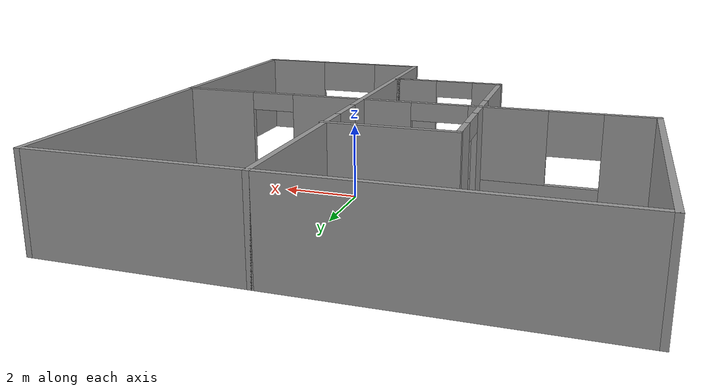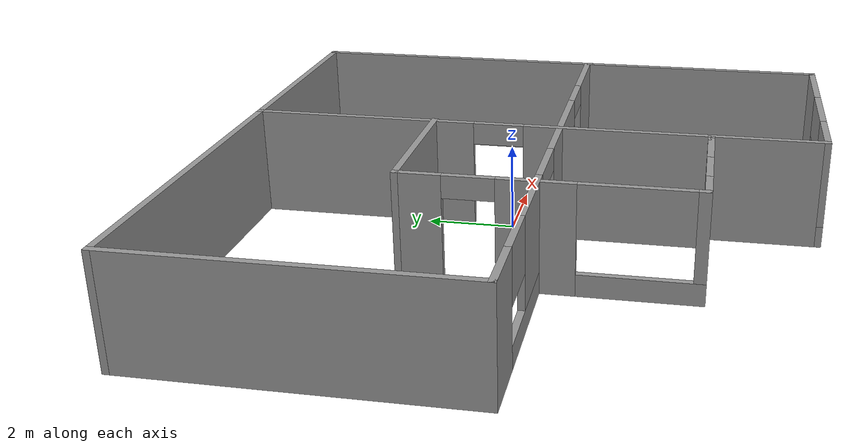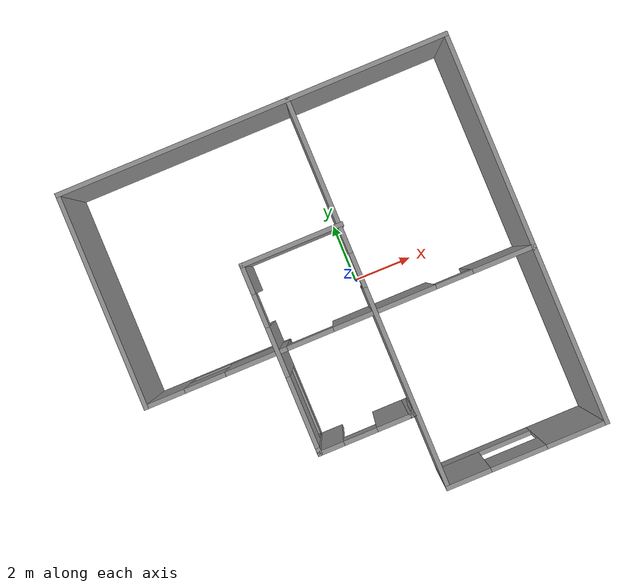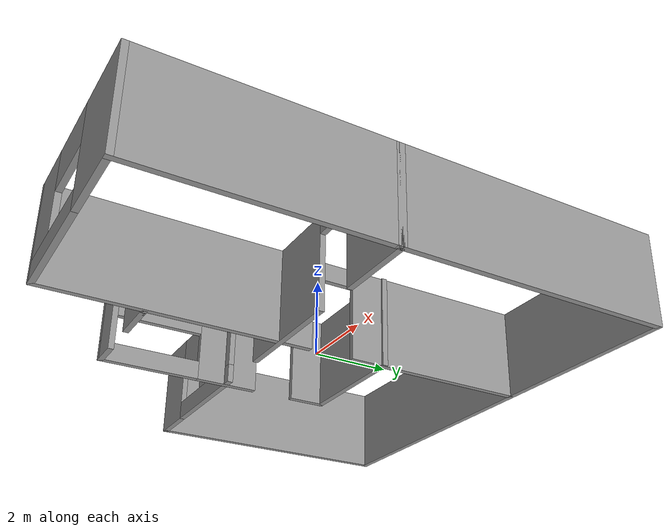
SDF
<?xml version='1.0'?>
<sdf version='1.7'>
  <model name='Floorplan'>
    <pose>-1.05619 -0.451332 0 0 -0 0</pose>
    <link name='Wall_0'>
      <collision name='Wall_0_Collision'>
        <geometry>
          <box>
            <size>13.25 0.15 2.5</size>
          </box>
        </geometry>
        <pose>0 0 1.25 0 -0 0</pose>
      </collision>
      <visual name='Wall_0_Visual'>
        <pose>0 0 1.25 0 -0 0</pose>
        <geometry>
          <box>
            <size>13.25 0.15 2.5</size>
          </box>
        </geometry>
        <material>
          <script>
            <uri>file://media/materials/scripts/gazebo.material</uri>
            <name>Gazebo/Grey</name>
          </script>
          <ambient>1 1 1 1</ambient>
        </material>
        <meta>
          <layer>0</layer>
        </meta>
      </visual>
      <pose>-0 6.55 0 0 -0 0</pose>
    </link>
    <link name='Wall_1'>
      <collision name='Wall_1_Collision'>
        <geometry>
          <box>
            <size>13.25 0.15 2.5</size>
          </box>
        </geometry>
        <pose>0 0 1.25 0 -0 0</pose>
      </collision>
      <visual name='Wall_1_Visual'>
        <pose>0 0 1.25 0 -0 0</pose>
        <geometry>
          <box>
            <size>13.25 0.15 2.5</size>
          </box>
        </geometry>
        <material>
          <script>
            <uri>file://media/materials/scripts/gazebo.material</uri>
            <name>Gazebo/Grey</name>
          </script>
          <ambient>1 1 1 1</ambient>
        </material>
        <meta>
          <layer>0</layer>
        </meta>
      </visual>
      <pose>6.55 0 0 0 -0 -1.5708</pose>
    </link>
    <link name='Wall_10'>
      <collision name='Wall_10_Collision'>
        <geometry>
          <box>
            <size>3.5 0.15 2.5</size>
          </box>
        </geometry>
        <pose>0 0 1.25 0 -0 0</pose>
      </collision>
      <visual name='Wall_10_Visual'>
        <pose>0 0 1.25 0 -0 0</pose>
        <geometry>
          <box>
            <size>3.5 0.15 2.5</size>
          </box>
        </geometry>
        <material>
          <script>
            <uri>file://media/materials/scripts/gazebo.material</uri>
            <name>Gazebo/Grey</name>
          </script>
          <ambient>1 1 1 1</ambient>
        </material>
        <meta>
          <layer>0</layer>
        </meta>
      </visual>
      <pose>-0.419203 2.32102 0 0 -0 3.14159</pose>
    </link>
    <link name='Wall_11'>
      <pose>-2.0942 -0.853976 0 0 -0 -1.5708</pose>
      <visual name='Wall_11_Visual_0'>
        <pose>-2.72388 0 1.25 0 -0 0</pose>
        <geometry>
          <box>
            <size>1.05224 0.15 2.5</size>
          </box>
        </geometry>
        <material>
          <script>
            <uri>file://media/materials/scripts/gazebo.material</uri>
            <name>Gazebo/Grey</name>
          </script>
          <ambient>1 1 1 1</ambient>
        </material>
        <meta>
          <layer>0</layer>
        </meta>
      </visual>
      <collision name='Wall_11_Collision_0'>
        <geometry>
          <box>
            <size>1.05224 0.15 2.5</size>
          </box>
        </geometry>
        <pose>-2.72388 0 1.25 0 -0 0</pose>
      </collision>
      <visual name='Wall_11_Visual_1'>
        <pose>-0.24734 0 1.25 0 -0 0</pose>
        <geometry>
          <box>
            <size>1.66877 0.15 2.5</size>
          </box>
        </geometry>
        <material>
          <script>
            <uri>file://media/materials/scripts/gazebo.material</uri>
            <name>Gazebo/Grey</name>
          </script>
          <ambient>1 1 1 1</ambient>
        </material>
        <meta>
          <layer>0</layer>
        </meta>
      </visual>
      <collision name='Wall_11_Collision_1'>
        <geometry>
          <box>
            <size>1.66877 0.15 2.5</size>
          </box>
        </geometry>
        <pose>-0.24734 0 1.25 0 -0 0</pose>
      </collision>
      <visual name='Wall_11_Visual_2'>
        <pose>1.91852 0 0.25 0 -0 0</pose>
        <geometry>
          <box>
            <size>2.66296 0.15 0.5</size>
          </box>
        </geometry>
        <material>
          <script>
            <uri>file://media/materials/scripts/gazebo.material</uri>
            <name>Gazebo/Grey</name>
          </script>
          <ambient>1 1 1 1</ambient>
        </material>
        <meta>
          <layer>0</layer>
        </meta>
      </visual>
      <collision name='Wall_11_Collision_2'>
        <geometry>
          <box>
            <size>2.66296 0.15 0.5</size>
          </box>
        </geometry>
        <pose>1.91852 0 0.25 0 -0 0</pose>
      </collision>
      <visual name='Wall_11_Visual_3'>
        <pose>3.11898 0 1.5 0 -0 0</pose>
        <geometry>
          <box>
            <size>0.262046 0.15 2</size>
          </box>
        </geometry>
        <material>
          <script>
            <uri>file://media/materials/scripts/gazebo.material</uri>
            <name>Gazebo/Grey</name>
          </script>
          <ambient>1 1 1 1</ambient>
        </material>
        <meta>
          <layer>0</layer>
        </meta>
      </visual>
      <collision name='Wall_11_Collision_3'>
        <geometry>
          <box>
            <size>0.262046 0.15 2</size>
          </box>
        </geometry>
        <pose>3.11898 0 1.5 0 -0 0</pose>
      </collision>
      <visual name='Wall_11_Visual_4'>
        <pose>1.7875 0 1.9 0 -0 0</pose>
        <geometry>
          <box>
            <size>2.40091 0.15 1.2</size>
          </box>
        </geometry>
        <material>
          <script>
            <uri>file://media/materials/scripts/gazebo.material</uri>
            <name>Gazebo/Grey</name>
          </script>
          <ambient>1 1 1 1</ambient>
        </material>
        <meta>
          <layer>0</layer>
        </meta>
      </visual>
      <collision name='Wall_11_Collision_4'>
        <geometry>
          <box>
            <size>2.40091 0.15 1.2</size>
          </box>
        </geometry>
        <pose>1.7875 0 1.9 0 -0 0</pose>
      </collision>
      <visual name='Wall_11_Visual_5'>
        <pose>-1.63975 0 2.25 0 -0 0</pose>
        <geometry>
          <box>
            <size>1.11604 0.15 0.5</size>
          </box>
        </geometry>
        <material>
          <script>
            <uri>file://media/materials/scripts/gazebo.material</uri>
            <name>Gazebo/Grey</name>
          </script>
          <ambient>1 1 1 1</ambient>
        </material>
        <meta>
          <layer>0</layer>
        </meta>
      </visual>
      <collision name='Wall_11_Collision_5'>
        <geometry>
          <box>
            <size>1.11604 0.15 0.5</size>
          </box>
        </geometry>
        <pose>-1.63975 0 2.25 0 -0 0</pose>
      </collision>
    </link>
    <link name='Wall_12'>
      <pose>-0.544203 -4.02897 0 0 -0 0</pose>
      <visual name='Wall_12_Visual_0'>
        <pose>-1.17371 0 1.25 0 -0 0</pose>
        <geometry>
          <box>
            <size>0.902576 0.15 2.5</size>
          </box>
        </geometry>
        <material>
          <script>
            <uri>file://media/materials/scripts/gazebo.material</uri>
            <name>Gazebo/Grey</name>
          </script>
          <ambient>1 1 1 1</ambient>
        </material>
        <meta>
          <layer>0</layer>
        </meta>
      </visual>
      <collision name='Wall_12_Collision_0'>
        <geometry>
          <box>
            <size>0.902576 0.15 2.5</size>
          </box>
        </geometry>
        <pose>-1.17371 0 1.25 0 -0 0</pose>
      </collision>
      <visual name='Wall_12_Visual_1'>
        <pose>1.01067 0 1.25 0 -0 0</pose>
        <geometry>
          <box>
            <size>1.22867 0.15 2.5</size>
          </box>
        </geometry>
        <material>
          <script>
            <uri>file://media/materials/scripts/gazebo.material</uri>
            <name>Gazebo/Grey</name>
          </script>
          <ambient>1 1 1 1</ambient>
        </material>
        <meta>
          <layer>0</layer>
        </meta>
      </visual>
      <collision name='Wall_12_Collision_1'>
        <geometry>
          <box>
            <size>1.22867 0.15 2.5</size>
          </box>
        </geometry>
        <pose>1.01067 0 1.25 0 -0 0</pose>
      </collision>
      <visual name='Wall_12_Visual_2'>
        <pose>-0.163045 0 2.25 0 -0 0</pose>
        <geometry>
          <box>
            <size>1.11876 0.15 0.5</size>
          </box>
        </geometry>
        <material>
          <script>
            <uri>file://media/materials/scripts/gazebo.material</uri>
            <name>Gazebo/Grey</name>
          </script>
          <ambient>1 1 1 1</ambient>
        </material>
        <meta>
          <layer>0</layer>
        </meta>
      </visual>
      <collision name='Wall_12_Collision_2'>
        <geometry>
          <box>
            <size>1.11876 0.15 0.5</size>
          </box>
        </geometry>
        <pose>-0.163045 0 2.25 0 -0 0</pose>
      </collision>
    </link>
    <link name='Wall_13'>
      <collision name='Wall_13_Collision'>
        <geometry>
          <box>
            <size>0.25 0.15 2.5</size>
          </box>
        </geometry>
        <pose>0 0 1.25 0 -0 0</pose>
      </collision>
      <visual name='Wall_13_Visual'>
        <pose>0 0 1.25 0 -0 0</pose>
        <geometry>
          <box>
            <size>0.25 0.15 2.5</size>
          </box>
        </geometry>
        <material>
          <script>
            <uri>file://media/materials/scripts/gazebo.material</uri>
            <name>Gazebo/Grey</name>
          </script>
          <ambient>1 1 1 1</ambient>
        </material>
        <meta>
          <layer>0</layer>
        </meta>
      </visual>
      <pose>1.0558 -4.02897 0 0 -0 0</pose>
    </link>
    <link name='Wall_14'>
      <collision name='Wall_14_Collision'>
        <geometry>
          <box>
            <size>0.16 0.15 2.5</size>
          </box>
        </geometry>
        <pose>0 0 1.25 0 -0 0</pose>
      </collision>
      <visual name='Wall_14_Visual'>
        <pose>0 0 1.25 0 -0 0</pose>
        <geometry>
          <box>
            <size>0.16 0.15 2.5</size>
          </box>
        </geometry>
        <material>
          <script>
            <uri>file://media/materials/scripts/gazebo.material</uri>
            <name>Gazebo/Grey</name>
          </script>
          <ambient>1 1 1 1</ambient>
        </material>
        <meta>
          <layer>0</layer>
        </meta>
      </visual>
      <pose>1.1108 -4.02897 0 0 -0 0</pose>
    </link>
    <link name='Wall_2'>
      <pose>3.875 -6.55 0 0 -0 3.14159</pose>
      <visual name='Wall_2_Visual_0'>
        <pose>-1.7016 0 1.25 0 -0 0</pose>
        <geometry>
          <box>
            <size>2.09681 0.15 2.5</size>
          </box>
        </geometry>
        <material>
          <script>
            <uri>file://media/materials/scripts/gazebo.material</uri>
            <name>Gazebo/Grey</name>
          </script>
          <ambient>1 1 1 1</ambient>
        </material>
        <meta>
          <layer>0</layer>
        </meta>
      </visual>
      <collision name='Wall_2_Collision_0'>
        <geometry>
          <box>
            <size>2.09681 0.15 2.5</size>
          </box>
        </geometry>
        <pose>-1.7016 0 1.25 0 -0 0</pose>
      </collision>
      <visual name='Wall_2_Visual_1'>
        <pose>1.0484 0 0.25 0 -0 0</pose>
        <geometry>
          <box>
            <size>3.40319 0.15 0.5</size>
          </box>
        </geometry>
        <material>
          <script>
            <uri>file://media/materials/scripts/gazebo.material</uri>
            <name>Gazebo/Grey</name>
          </script>
          <ambient>1 1 1 1</ambient>
        </material>
        <meta>
          <layer>0</layer>
        </meta>
      </visual>
      <collision name='Wall_2_Collision_1'>
        <geometry>
          <box>
            <size>3.40319 0.15 0.5</size>
          </box>
        </geometry>
        <pose>1.0484 0 0.25 0 -0 0</pose>
      </collision>
      <visual name='Wall_2_Visual_2'>
        <pose>1.9874 0 1.5 0 -0 0</pose>
        <geometry>
          <box>
            <size>1.52519 0.15 2</size>
          </box>
        </geometry>
        <material>
          <script>
            <uri>file://media/materials/scripts/gazebo.material</uri>
            <name>Gazebo/Grey</name>
          </script>
          <ambient>1 1 1 1</ambient>
        </material>
        <meta>
          <layer>0</layer>
        </meta>
      </visual>
      <collision name='Wall_2_Collision_2'>
        <geometry>
          <box>
            <size>1.52519 0.15 2</size>
          </box>
        </geometry>
        <pose>1.9874 0 1.5 0 -0 0</pose>
      </collision>
      <visual name='Wall_2_Visual_3'>
        <pose>0.285807 0 2 0 -0 0</pose>
        <geometry>
          <box>
            <size>1.878 0.15 1</size>
          </box>
        </geometry>
        <material>
          <script>
            <uri>file://media/materials/scripts/gazebo.material</uri>
            <name>Gazebo/Grey</name>
          </script>
          <ambient>1 1 1 1</ambient>
        </material>
        <meta>
          <layer>0</layer>
        </meta>
      </visual>
      <collision name='Wall_2_Collision_3'>
        <geometry>
          <box>
            <size>1.878 0.15 1</size>
          </box>
        </geometry>
        <pose>0.285807 0 2 0 -0 0</pose>
      </collision>
    </link>
    <link name='Wall_3'>
      <pose>1.2 0 0 0 -0 1.5708</pose>
      <visual name='Wall_3_Visual_0'>
        <pose>-3.20624 0 1.25 0 -0 0</pose>
        <geometry>
          <box>
            <size>6.83751 0.15 2.5</size>
          </box>
        </geometry>
        <material>
          <script>
            <uri>file://media/materials/scripts/gazebo.material</uri>
            <name>Gazebo/Grey</name>
          </script>
          <ambient>1 1 1 1</ambient>
        </material>
        <meta>
          <layer>0</layer>
        </meta>
      </visual>
      <collision name='Wall_3_Collision_0'>
        <geometry>
          <box>
            <size>6.83751 0.15 2.5</size>
          </box>
        </geometry>
        <pose>-3.20624 0 1.25 0 -0 0</pose>
      </collision>
      <visual name='Wall_3_Visual_1'>
        <pose>3.99952 0 1.25 0 -0 0</pose>
        <geometry>
          <box>
            <size>5.25096 0.15 2.5</size>
          </box>
        </geometry>
        <material>
          <script>
            <uri>file://media/materials/scripts/gazebo.material</uri>
            <name>Gazebo/Grey</name>
          </script>
          <ambient>1 1 1 1</ambient>
        </material>
        <meta>
          <layer>0</layer>
        </meta>
      </visual>
      <collision name='Wall_3_Collision_1'>
        <geometry>
          <box>
            <size>5.25096 0.15 2.5</size>
          </box>
        </geometry>
        <pose>3.99952 0 1.25 0 -0 0</pose>
      </collision>
      <visual name='Wall_3_Visual_2'>
        <pose>0.793274 0 2.25 0 -0 0</pose>
        <geometry>
          <box>
            <size>1.16152 0.15 0.5</size>
          </box>
        </geometry>
        <material>
          <script>
            <uri>file://media/materials/scripts/gazebo.material</uri>
            <name>Gazebo/Grey</name>
          </script>
          <ambient>1 1 1 1</ambient>
        </material>
        <meta>
          <layer>0</layer>
        </meta>
      </visual>
      <collision name='Wall_3_Collision_2'>
        <geometry>
          <box>
            <size>1.16152 0.15 0.5</size>
          </box>
        </geometry>
        <pose>0.793274 0 2.25 0 -0 0</pose>
      </collision>
    </link>
    <link name='Wall_4'>
      <collision name='Wall_4_Collision'>
        <geometry>
          <box>
            <size>0.15 0.15 2.5</size>
          </box>
        </geometry>
        <pose>0 0 1.25 0 -0 0</pose>
      </collision>
      <visual name='Wall_4_Visual'>
        <pose>0 0 1.25 0 -0 0</pose>
        <geometry>
          <box>
            <size>0.15 0.15 2.5</size>
          </box>
        </geometry>
        <material>
          <script>
            <uri>file://media/materials/scripts/gazebo.material</uri>
            <name>Gazebo/Grey</name>
          </script>
          <ambient>1 1 1 1</ambient>
        </material>
        <meta>
          <layer>0</layer>
        </meta>
      </visual>
      <pose>1.2 6.55 0 0 -0 0</pose>
    </link>
    <link name='Wall_6'>
      <collision name='Wall_6_Collision'>
        <geometry>
          <box>
            <size>7.31853 0.15 2.5</size>
          </box>
        </geometry>
        <pose>0 0 1.25 0 -0 0</pose>
      </collision>
      <visual name='Wall_6_Visual'>
        <pose>0 0 1.25 0 -0 0</pose>
        <geometry>
          <box>
            <size>7.31853 0.15 2.5</size>
          </box>
        </geometry>
        <material>
          <script>
            <uri>file://media/materials/scripts/gazebo.material</uri>
            <name>Gazebo/Grey</name>
          </script>
          <ambient>1 1 1 1</ambient>
        </material>
        <meta>
          <layer>0</layer>
        </meta>
      </visual>
      <pose>-6.55 2.96574 0 0 -0 -1.5708</pose>
    </link>
    <link name='Wall_7'>
      <pose>-0 -0.618526 0 0 -0 0</pose>
      <visual name='Wall_7_Visual_0'>
        <pose>-5.92929 0 1.25 0 -0 0</pose>
        <geometry>
          <box>
            <size>1.39141 0.15 2.5</size>
          </box>
        </geometry>
        <material>
          <script>
            <uri>file://media/materials/scripts/gazebo.material</uri>
            <name>Gazebo/Grey</name>
          </script>
          <ambient>1 1 1 1</ambient>
        </material>
        <meta>
          <layer>0</layer>
        </meta>
      </visual>
      <collision name='Wall_7_Collision_0'>
        <geometry>
          <box>
            <size>1.39141 0.15 2.5</size>
          </box>
        </geometry>
        <pose>-5.92929 0 1.25 0 -0 0</pose>
      </collision>
      <visual name='Wall_7_Visual_1'>
        <pose>1.5186 0 1.25 0 -0 0</pose>
        <geometry>
          <box>
            <size>3.46237 0.15 2.5</size>
          </box>
        </geometry>
        <material>
          <script>
            <uri>file://media/materials/scripts/gazebo.material</uri>
            <name>Gazebo/Grey</name>
          </script>
          <ambient>1 1 1 1</ambient>
        </material>
        <meta>
          <layer>0</layer>
        </meta>
      </visual>
      <collision name='Wall_7_Collision_1'>
        <geometry>
          <box>
            <size>3.46237 0.15 2.5</size>
          </box>
        </geometry>
        <pose>1.5186 0 1.25 0 -0 0</pose>
      </collision>
      <visual name='Wall_7_Visual_2'>
        <pose>5.55762 0 1.25 0 -0 0</pose>
        <geometry>
          <box>
            <size>2.13476 0.15 2.5</size>
          </box>
        </geometry>
        <material>
          <script>
            <uri>file://media/materials/scripts/gazebo.material</uri>
            <name>Gazebo/Grey</name>
          </script>
          <ambient>1 1 1 1</ambient>
        </material>
        <meta>
          <layer>0</layer>
        </meta>
      </visual>
      <collision name='Wall_7_Collision_2'>
        <geometry>
          <box>
            <size>2.13476 0.15 2.5</size>
          </box>
        </geometry>
        <pose>5.55762 0 1.25 0 -0 0</pose>
      </collision>
      <visual name='Wall_7_Visual_3'>
        <pose>-3.50287 0 0.25 0 -0 0</pose>
        <geometry>
          <box>
            <size>3.46143 0.15 0.5</size>
          </box>
        </geometry>
        <material>
          <script>
            <uri>file://media/materials/scripts/gazebo.material</uri>
            <name>Gazebo/Grey</name>
          </script>
          <ambient>1 1 1 1</ambient>
        </material>
        <meta>
          <layer>0</layer>
        </meta>
      </visual>
      <collision name='Wall_7_Collision_3'>
        <geometry>
          <box>
            <size>3.46143 0.15 0.5</size>
          </box>
        </geometry>
        <pose>-3.50287 0 0.25 0 -0 0</pose>
      </collision>
      <visual name='Wall_7_Visual_4'>
        <pose>-2.81564 0 1.5 0 -0 0</pose>
        <geometry>
          <box>
            <size>2.08696 0.15 2</size>
          </box>
        </geometry>
        <material>
          <script>
            <uri>file://media/materials/scripts/gazebo.material</uri>
            <name>Gazebo/Grey</name>
          </script>
          <ambient>1 1 1 1</ambient>
        </material>
        <meta>
          <layer>0</layer>
        </meta>
      </visual>
      <collision name='Wall_7_Collision_4'>
        <geometry>
          <box>
            <size>2.08696 0.15 2</size>
          </box>
        </geometry>
        <pose>-2.81564 0 1.5 0 -0 0</pose>
      </collision>
      <visual name='Wall_7_Visual_5'>
        <pose>-4.54635 0 1.9 0 -0 0</pose>
        <geometry>
          <box>
            <size>1.37447 0.15 1.2</size>
          </box>
        </geometry>
        <material>
          <script>
            <uri>file://media/materials/scripts/gazebo.material</uri>
            <name>Gazebo/Grey</name>
          </script>
          <ambient>1 1 1 1</ambient>
        </material>
        <meta>
          <layer>0</layer>
        </meta>
      </visual>
      <collision name='Wall_7_Collision_5'>
        <geometry>
          <box>
            <size>1.37447 0.15 1.2</size>
          </box>
        </geometry>
        <pose>-4.54635 0 1.9 0 -0 0</pose>
      </collision>
      <visual name='Wall_7_Visual_6'>
        <pose>3.87002 0 2.25 0 -0 0</pose>
        <geometry>
          <box>
            <size>1.24045 0.15 0.5</size>
          </box>
        </geometry>
        <material>
          <script>
            <uri>file://media/materials/scripts/gazebo.material</uri>
            <name>Gazebo/Grey</name>
          </script>
          <ambient>1 1 1 1</ambient>
        </material>
        <meta>
          <layer>0</layer>
        </meta>
      </visual>
      <collision name='Wall_7_Collision_6'>
        <geometry>
          <box>
            <size>1.24045 0.15 0.5</size>
          </box>
        </geometry>
        <pose>3.87002 0 2.25 0 -0 0</pose>
      </collision>
      <visual name='Wall_7_Visual_7'>
        <pose>-0.992372 0 2.25 0 -0 0</pose>
        <geometry>
          <box>
            <size>1.55958 0.15 0.5</size>
          </box>
        </geometry>
        <material>
          <script>
            <uri>file://media/materials/scripts/gazebo.material</uri>
            <name>Gazebo/Grey</name>
          </script>
          <ambient>1 1 1 1</ambient>
        </material>
        <meta>
          <layer>0</layer>
        </meta>
      </visual>
      <collision name='Wall_7_Collision_7'>
        <geometry>
          <box>
            <size>1.55958 0.15 0.5</size>
          </box>
        </geometry>
        <pose>-0.992372 0 2.25 0 -0 0</pose>
      </collision>
    </link>
    <link name='Wall_8'>
      <collision name='Wall_8_Collision'>
        <geometry>
          <box>
            <size>0.210491 0.15 2.5</size>
          </box>
        </geometry>
        <pose>0 0 1.25 0 -0 0</pose>
      </collision>
      <visual name='Wall_8_Visual'>
        <pose>0 0 1.25 0 -0 0</pose>
        <geometry>
          <box>
            <size>0.210491 0.15 2.5</size>
          </box>
        </geometry>
        <material>
          <script>
            <uri>file://media/materials/scripts/gazebo.material</uri>
            <name>Gazebo/Grey</name>
          </script>
          <ambient>1 1 1 1</ambient>
        </material>
        <meta>
          <layer>0</layer>
        </meta>
      </visual>
      <pose>6.55 -0.648771 0 0 -0 -1.5708</pose>
    </link>
    <static>1</static>
  </model>
</sdf>
